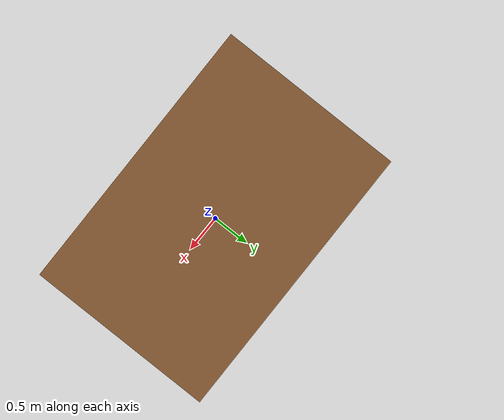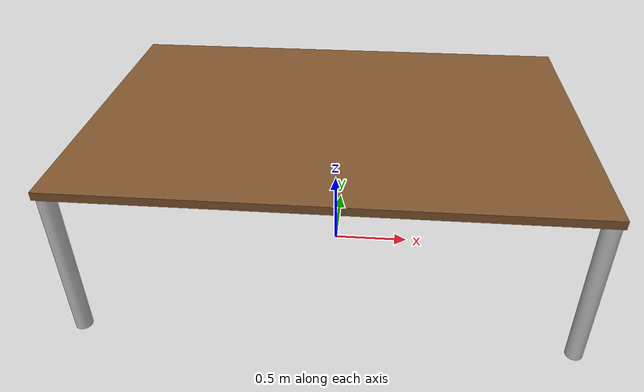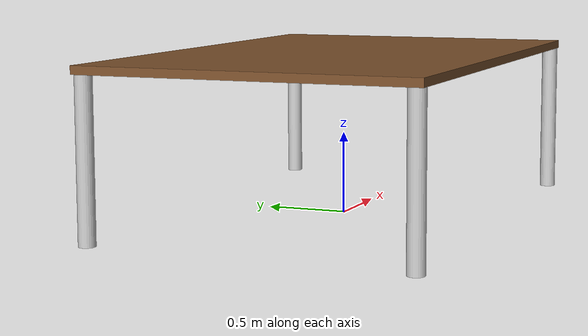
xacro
<?xml version="1.0" encoding="UTF-8"?>
<robot xmlns:xacro="http://wiki.ros.org/xacro" name="table">

  <xacro:include filename="materials.xacro" />
  <xacro:include filename="table_macro.xacro"/>

  <!-- create link fixed to the "world" -->
  <link name="world" />

  <!-- create the table top -->
  <xacro:table prefix="table_" parent="world">
    <!-- position robot in the world -->
    <origin xyz="0 0 1" rpy="0 0 0" />
  </xacro:table>

</robot>

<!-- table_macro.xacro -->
<robot xmlns:xacro="http://www.ros.org/wiki/xacro">

  <xacro:macro name="table" params="prefix parent *origin">

    <!-- Constants for robot dimensions -->
    <xacro:property name="table_length" value="3" /> <!-- base (x) of top -->
    <xacro:property name="table_width" value="2" /> <!-- width (y) of top  -->
    <xacro:property name="table_height" value="1" /> <!-- height (z) of top -->
    <xacro:property name="table_thickness" value=".05" /> <!-- height (z) of top -->
    <xacro:property name="leg_length" value="${table_height - table_thickness}" /> <!-- height leg -->
    <xacro:property name="leg_radius" value="0.05" /> <!-- radius of leg -->

  <!-- joint from "world" to "top"-->
  <joint name="${prefix}base_joint" type="fixed">
    <origin rpy="0 0 0" xyz="0 0 ${table_height}" />
    <parent link="${parent}" />
    <child link="${prefix}top" />
  </joint>

  <!-- Top Link -->
  <link name="${prefix}top">
    <visual>
      <origin rpy="0 0 0" xyz="0 0 ${-table_thickness/2}" />
      <geometry>
        <box size="${table_length} ${table_width} ${table_thickness}" />
      </geometry>
      <material name="brown" />
    </visual>
  </link>

  <!-- joint from "top" to "Leg1"-->
  <joint name="${prefix}leg1_joint" type="fixed">
    <origin rpy="0 0 0" xyz="${(table_length /2) - leg_radius} ${(table_width / 2) - leg_radius} 0" />
    <parent link="${prefix}top" />
    <child link="${prefix}leg1" />
  </joint>

  <!-- Leg1 Link -->
  <link name="${prefix}leg1">
    <visual>
      <origin rpy="0 0 0" xyz="0 0 ${-(table_height + table_thickness) / 2}" />
      <geometry>
        <cylinder radius="${leg_radius}" length="${leg_length}" />
      </geometry>
      <material name="light_grey" />
    </visual>
  </link>

  <!--joint from "top" to "Leg2"-->
  <joint name="${prefix}leg2_joint" type="fixed">
    <origin rpy="0 0 0" xyz="-${(table_length /2) - leg_radius}  ${(table_width / 2) - leg_radius} 0" />
    <parent link="${prefix}top" />
    <child link="${prefix}leg_link_2" />
  </joint>

  <!-- Leg2 Link -->
  <link name="${prefix}leg_link_2">
    <visual>
      <origin rpy="0 0 0" xyz="0 0 ${-(table_height + table_thickness) / 2}" />
      <geometry>
        <cylinder radius="${leg_radius}" length="${leg_length}" />
      </geometry>
      <material name="light_grey" />
    </visual>
  </link>

  <!-- joint from "top" to "leg3"-->
  <joint name="${prefix}leg3_joint" type="fixed">
    <origin rpy="0 0 0" xyz="${(table_length / 2) - leg_radius} -${(table_width / 2) - leg_radius} 0" />
    <parent link="${prefix}top" />
    <child link="${prefix}leg_link_3" />
  </joint>

  <!-- Leg3 Link -->
  <link name="${prefix}leg_link_3">
    <visual>
      <origin rpy="0 0 0" xyz="0 0 -${(table_height + table_thickness) / 2}" />
      <geometry>
        <cylinder radius="${leg_radius}" length="${leg_length}" />
      </geometry>
      <material name="light_grey" />
    </visual>
  </link>

  <!-- joint from "top" to "leg4"-->
  <joint name="${prefix}leg4_joint" type="fixed">
    <origin rpy="0 0 0" xyz="-${(table_length /2) - leg_radius} -${(table_width / 2) - leg_radius} 0" />
    <parent link="${prefix}top" />
    <child link="${prefix}leg_link_4" />
  </joint>

  <!-- Leg4 Link -->
  <link name="${prefix}leg_link_4">
    <visual>
      <origin rpy="0 0 0" xyz="0 0 -${(table_height + table_thickness) / 2}" />
      <geometry>
        <cylinder radius="${leg_radius}" length="${leg_length}" />
      </geometry>
      <material name="light_grey" />
    </visual>
  </link>

  </xacro:macro>

</robot>
